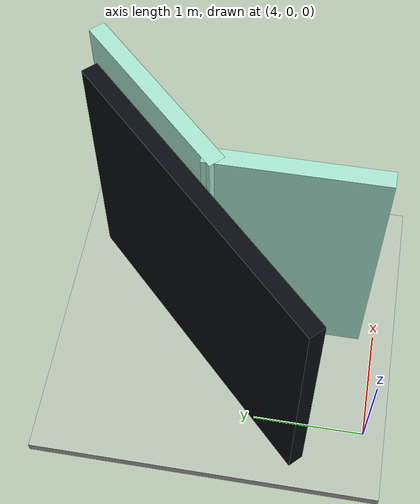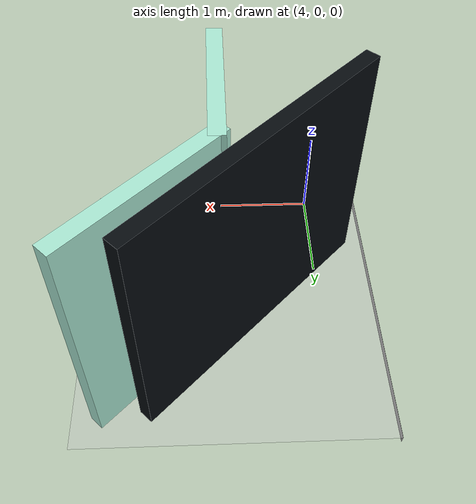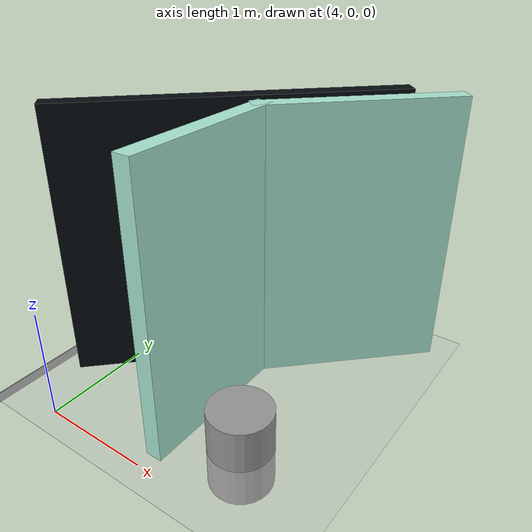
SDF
<sdf version="1.7">
 <world name="default">
  <model name="ground_plane">
   <static>1</static>
   <link name="link">
    <collision name="collision">
     <geometry><plane><normal>0 0 1</normal><size>100 100</size></plane></geometry>
     <surface><friction><ode><mu>100</mu><mu2>50</mu2></ode></friction></surface>
    </collision>
    <visual name="visual">
     <cast_shadows>0</cast_shadows>
     <geometry><plane><normal>0 0 1</normal><size>100 100</size></plane></geometry>
     <material>
      <script><uri>file://media/materials/scripts/gazebo.material</uri><name>Gazebo/Grey</name></script>
      <ambient>0.55 0.55 0.53 1</ambient>
      <diffuse>0.55 0.55 0.53 1</diffuse>
      <specular>0.08 0.08 0.08 1</specular>
      <emissive>0 0 0 1</emissive>
     </material>
    </visual>
   </link>
  </model>
  <model name="among_us_world">
   <pose>0.133216 -0.12311 0 0 -0 0</pose>
   <link name="Wall_128">
    <collision name="Wall_128_Collision">
     <geometry><box><size>1.75 0.15 2.5</size></box></geometry>
     <pose>0 0 1.25 0 -0 0</pose>
    </collision>
    <visual name="Wall_128_Visual">
     <pose>0 0 1.25 0 -0 0</pose>
     <geometry><box><size>1.75 0.15 2.5</size></box></geometry>
     <material>
      <script><uri>file://media/materials/scripts/gazebo.material</uri><name>Gazebo/Motorway</name></script>
      <ambient>0.66 0.90 0.82 1</ambient>
      <diffuse>0.66 0.90 0.82 1</diffuse>
      <specular>0.08 0.08 0.08 1</specular>
      <emissive>0 0 0 1</emissive>
     </material>
     <meta><layer>0</layer></meta>
    </visual>
    <pose>5.47138 2.24804 0 0 -0 -2.35619</pose>
   </link>
   <link name="Wall_129">
    <collision name="Wall_129_Collision">
     <geometry><box><size>1.5 0.15 2.5</size></box></geometry>
     <pose>0 0 1.25 0 -0 0</pose>
    </collision>
    <visual name="Wall_129_Visual">
     <pose>0 0 1.25 0 -0 0</pose>
     <geometry><box><size>1.5 0.15 2.5</size></box></geometry>
     <material>
      <script><uri>file://media/materials/scripts/gazebo.material</uri><name>Gazebo/Motorway</name></script>
      <ambient>0.66 0.90 0.82 1</ambient>
      <diffuse>0.66 0.90 0.82 1</diffuse>
      <specular>0.08 0.08 0.08 1</specular>
      <emissive>0 0 0 1</emissive>
     </material>
     <meta><layer>0</layer></meta>
    </visual>
    <pose>4.9057 1.00735 0 0 -0 -1.5708</pose>
   </link>
   <link name="Wall_180">
    <collision name="Wall_180_Collision">
     <geometry><box><size>3 0.15 2.5</size></box></geometry>
     <pose>0 0 1.25 0 -0 0</pose>
    </collision>
    <visual name="Wall_180_Visual">
     <pose>0 0 1.25 0 -0 0</pose>
     <geometry><box><size>3 0.15 2.5</size></box></geometry>
     <material>
      <script><uri>file://media/materials/scripts/gazebo.material</uri><name>Gazebo/Motorway</name></script>
      <ambient>0.025 0.045 0.06 1</ambient>
      <diffuse>0.025 0.045 0.06 1</diffuse>
      <specular>0.08 0.08 0.08 1</specular>
      <emissive>0 0 0 1</emissive>
     </material>
     <meta><layer>0</layer></meta>
    </visual>
    <pose>4.57485 1.76069 0 0 -0 -2.35619</pose>
   </link>
   <static>1</static>
  </model>
  <model name="first_2015_trash_can_clone_0">
   <link name="link">
    <inertial>
     <pose>0 0 0.3683 0 -0 0</pose>
     <mass>4.83076</mass>
     <inertia>
      <ixx>0.281534</ixx>
      <ixy>0</ixy>
      <ixz>0</ixz>
      <iyy>0.281534</iyy>
      <iyz>0</iyz>
      <izz>0.126223</izz>
     </inertia>
    </inertial>
    <visual name="visual">
     <geometry><cylinder><radius>0.28</radius><length>0.75</length></cylinder></geometry>
     <material>
      <script><uri>file://media/materials/scripts/gazebo.material</uri><name>Gazebo/Grey</name></script>
      <ambient>0.42 0.43 0.42 1</ambient>
      <diffuse>0.42 0.43 0.42 1</diffuse>
      <specular>0.08 0.08 0.08 1</specular>
      <emissive>0 0 0 1</emissive>
     </material>
    </visual>
    <collision name="collision">
     <geometry><cylinder><radius>0.28</radius><length>0.75</length></cylinder></geometry>
    </collision>
   </link>
   <pose>5.51934 0.638148 0.009999 -2.1e-05 8e-06 -0.02654</pose>
  </model>
  <model name="asphalt_plane">
   <static>1</static>
   <link name="link">
    <collision name="collision"><geometry><box><size>20 20 0.1</size></box></geometry></collision>
    <visual name="visual">
     <cast_shadows>0</cast_shadows>
     <geometry><box><size>20 20 0.1</size></box></geometry>
     <material>
      <script><uri>file://media/materials/scripts/gazebo.material</uri><name>Gazebo/Grey</name></script>
      <ambient>0.23 0.23 0.22 1</ambient>
      <diffuse>0.23 0.23 0.22 1</diffuse>
      <specular>0.08 0.08 0.08 1</specular>
      <emissive>0 0 0 1</emissive>
     </material>
    </visual>
   </link>
   <pose>-12.6134 -1.31009 -0.045514 0 -0 0</pose>
  </model>
 </world>
</sdf>
